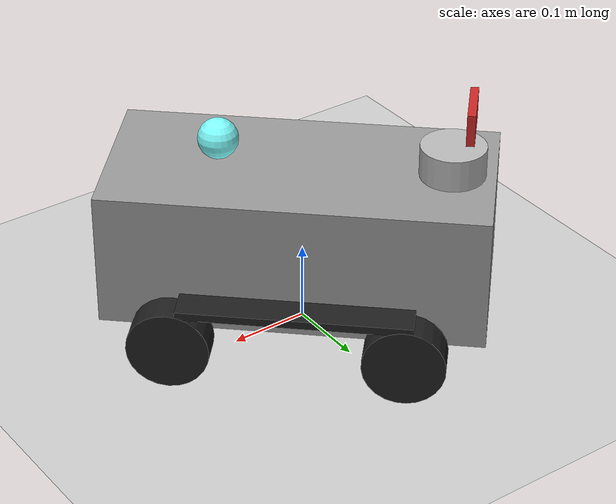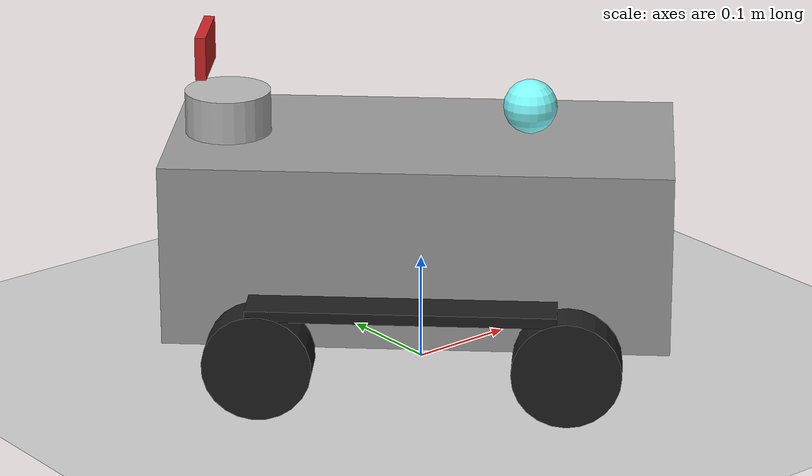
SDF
<sdf version="1.7">
 <world name="default">
  <model name="ground_plane">
   <static>1</static>
   <link name="link">
    <collision name="collision">
     <geometry><plane><normal>0 0 1</normal><size>100 100</size></plane></geometry>
     <surface>
      <contact><collide_bitmask>65535</collide_bitmask></contact>
      <friction><ode><mu>100</mu><mu2>50</mu2></ode></friction>
     </surface>
    </collision>
    <visual name="visual">
     <cast_shadows>0</cast_shadows>
     <geometry><plane><normal>0 0 1</normal><size>100 100</size></plane></geometry>
     <material>
      <script><uri>file://media/materials/scripts/gazebo.material</uri><name>Gazebo/Grey</name></script>
     </material>
    </visual>
   </link>
  </model>
  <model name="tankbot0">
   <pose>0.003414 0.002649 1e-06 8e-06 1.2e-05 2.39898</pose>
   <frame name="tankbot::__model__" attached_to="tankbot::chassis">
    <pose relative_to="__model__">0 0 0 0 -0 0</pose>
   </frame>
   <link name="tankbot::chassis">
    <pose relative_to="tankbot::__model__">0 0 0.135 0 -0 0</pose>
    <inertial>
     <pose>0.0465 0 0 0 -0 0</pose>
     <mass>2</mass>
     <inertia>
      <ixx>0.0125927</ixx>
      <iyy>0.0408542</iyy>
      <izz>0.0438135</izz>
      <ixy>0</ixy>
      <ixz>0</ixz>
      <iyz>0</iyz>
     </inertia>
    </inertial>
    <collision name="collision"><geometry><box><size>0.465 0.216 0.17</size></box></geometry></collision>
    <visual name="visual">
     <geometry><box><size>0.465 0.216 0.17</size></box></geometry>
     <material>
      <script><uri>file://media/materials/scripts/gazebo.material</uri><name>Gazebo/Grey</name></script>
     </material>
    </visual>
   </link>
   <link name="tankbot::wheel_fl">
    <pose relative_to="tankbot::__model__">0.1395 0.142 0.05 -1.5708 -0.087266 0</pose>
    <inertial>
     <mass>0.25</mass>
     <inertia>
      <ixx>0.000189583</ixx>
      <iyy>0.000189583</iyy>
      <izz>0.0003125</izz>
      <ixy>0</ixy>
      <ixz>0</ixz>
      <iyz>0</iyz>
     </inertia>
    </inertial>
    <collision name="collision">
     <geometry><cylinder><radius>0.05</radius><length>0.04</length></cylinder></geometry>
    </collision>
    <visual name="tankbot::wheel_fl">
     <geometry><cylinder><radius>0.05</radius><length>0.04</length></cylinder></geometry>
     <material>
      <script><uri>file://media/materials/scripts/gazebo.material</uri><name>Gazebo/Black</name></script>
     </material>
    </visual>
   </link>
   <joint name="tankbot::wheel_fl_drive" type="revolute">
    <parent>tankbot::chassis</parent>
    <child>tankbot::wheel_fl</child>
    <axis>
     <xyz>0 0 1</xyz>
     <limit><lower>-1e+16</lower><upper>1e+16</upper></limit>
     <dynamics><spring_reference>0</spring_reference><spring_stiffness>0</spring_stiffness></dynamics>
    </axis>
   </joint>
   <link name="tankbot::chain_l_up">
    <pose relative_to="tankbot::__model__">0.0098 0.14 0.1 0 -0 0</pose>
    <gravity>0</gravity>
    <collision name="collision"><geometry><box><size>0.28 0.04 0.01</size></box></geometry></collision>
    <visual name="visual">
     <geometry><box><size>0.28 0.04 0.01</size></box></geometry>
     <material>
      <script><uri>file://media/materials/scripts/gazebo.material</uri><name>Gazebo/Black</name></script>
     </material>
    </visual>
    <inertial>
     <inertia><ixx>1</ixx><ixy>0</ixy><ixz>0</ixz><iyy>1</iyy><iyz>0</iyz><izz>1</izz></inertia>
     <mass>1</mass>
    </inertial>
   </link>
   <link name="tankbot::chain_r_up">
    <pose relative_to="tankbot::__model__">0.0098 -0.14 0.1 0 -0 0</pose>
    <gravity>0</gravity>
    <collision name="collision"><geometry><box><size>0.28 0.04 0.01</size></box></geometry></collision>
    <visual name="visual">
     <geometry><box><size>0.28 0.04 0.01</size></box></geometry>
     <material>
      <script><uri>file://media/materials/scripts/gazebo.material</uri><name>Gazebo/Black</name></script>
     </material>
    </visual>
    <inertial>
     <inertia><ixx>1</ixx><ixy>0</ixy><ixz>0</ixz><iyy>1</iyy><iyz>0</iyz><izz>1</izz></inertia>
     <mass>1</mass>
    </inertial>
   </link>
   <joint name="tankbot::chain_up_joint" type="revolute">
    <parent>tankbot::chassis</parent>
    <child>tankbot::chain_r_up</child>
   </joint>
   <joint name="tankbot::chain_up_2_joint" type="revolute">
    <parent>tankbot::chassis</parent>
    <child>tankbot::chain_l_up</child>
   </joint>
   <link name="tankbot::wheel_fr">
    <pose relative_to="tankbot::__model__">0.1395 -0.142 0.05 -1.5708 -0.087266 0</pose>
    <inertial>
     <mass>0.25</mass>
     <inertia>
      <ixx>0.000189583</ixx>
      <iyy>0.000189583</iyy>
      <izz>0.0003125</izz>
      <ixy>0</ixy>
      <ixz>0</ixz>
      <iyz>0</iyz>
     </inertia>
    </inertial>
    <collision name="collision">
     <geometry><cylinder><radius>0.05</radius><length>0.04</length></cylinder></geometry>
    </collision>
    <visual name="visual">
     <geometry><cylinder><radius>0.05</radius><length>0.04</length></cylinder></geometry>
     <material>
      <script><uri>file://media/materials/scripts/gazebo.material</uri><name>Gazebo/Black</name></script>
     </material>
    </visual>
   </link>
   <joint name="tankbot::wheel_fr_drive" type="revolute">
    <parent>tankbot::chassis</parent>
    <child>tankbot::wheel_fr</child>
    <axis>
     <xyz>0 0 1</xyz>
     <limit><lower>-1e+16</lower><upper>1e+16</upper></limit>
     <dynamics><spring_reference>0</spring_reference><spring_stiffness>0</spring_stiffness></dynamics>
    </axis>
   </joint>
   <link name="tankbot::wheel_rl">
    <pose relative_to="tankbot::__model__">-0.1395 0.142 0.05 -1.5708 0 0</pose>
    <inertial>
     <mass>0.25</mass>
     <inertia>
      <ixx>0.000189583</ixx>
      <iyy>0.000189583</iyy>
      <izz>0.0003125</izz>
      <ixy>0</ixy>
      <ixz>0</ixz>
      <iyz>0</iyz>
     </inertia>
    </inertial>
    <collision name="collision">
     <geometry><cylinder><radius>0.05</radius><length>0.04</length></cylinder></geometry>
    </collision>
    <visual name="visual">
     <geometry><cylinder><radius>0.05</radius><length>0.04</length></cylinder></geometry>
     <material>
      <script><uri>file://media/materials/scripts/gazebo.material</uri><name>Gazebo/Black</name></script>
     </material>
    </visual>
   </link>
   <joint name="tankbot::wheel_rl_drive" type="revolute">
    <parent>tankbot::chassis</parent>
    <child>tankbot::wheel_rl</child>
    <axis>
     <xyz>0 0 1</xyz>
     <limit><lower>-1e+16</lower><upper>1e+16</upper></limit>
     <dynamics><spring_reference>0</spring_reference><spring_stiffness>0</spring_stiffness></dynamics>
    </axis>
   </joint>
   <link name="tankbot::wheel_rr">
    <pose relative_to="tankbot::__model__">-0.1395 -0.142 0.05 -1.5708 0 0</pose>
    <inertial>
     <mass>0.25</mass>
     <inertia>
      <ixx>0.000189583</ixx>
      <iyy>0.000189583</iyy>
      <izz>0.0003125</izz>
      <ixy>0</ixy>
      <ixz>0</ixz>
      <iyz>0</iyz>
     </inertia>
    </inertial>
    <collision name="collision">
     <geometry><cylinder><radius>0.05</radius><length>0.04</length></cylinder></geometry>
    </collision>
    <visual name="visual">
     <geometry><cylinder><radius>0.05</radius><length>0.04</length></cylinder></geometry>
     <material>
      <script><uri>file://media/materials/scripts/gazebo.material</uri><name>Gazebo/Black</name></script>
     </material>
    </visual>
   </link>
   <joint name="tankbot::wheel_rr_drive" type="revolute">
    <parent>tankbot::chassis</parent>
    <child>tankbot::wheel_rr</child>
    <axis>
     <xyz>0 0 1</xyz>
     <limit><lower>-1e+16</lower><upper>1e+16</upper></limit>
     <dynamics><spring_reference>0</spring_reference><spring_stiffness>0</spring_stiffness></dynamics>
    </axis>
   </joint>
   <frame name="tankbot::ultrasonic_sensor::__model__" attached_to="tankbot::ultrasonic_sensor::link">
    <pose relative_to="tankbot::__model__">0.18 0 0.24 0 -0 0</pose>
   </frame>
   <link name="tankbot::ultrasonic_sensor::link">
    <inertial>
     <mass>0.1</mass>
     <inertia><ixx>1</ixx><ixy>0</ixy><ixz>0</ixz><iyy>1</iyy><iyz>0</iyz><izz>1</izz></inertia>
    </inertial>
    <visual name="visual">
     <geometry><cylinder><radius>0.04</radius><length>0.04</length></cylinder></geometry>
    </visual>
    <collision name="collision-base">
     <pose>0 0 -0.0145 0 -0 0</pose>
     <geometry><box><size>0.05 0.05 0.041</size></box></geometry>
    </collision>
    <collision name="collision-top">
     <pose>0 0 0.0205 0 -0 0</pose>
     <geometry><cylinder><radius>0.021</radius><length>0.029</length></cylinder></geometry>
    </collision>
    <sensor name="sonar" type="sonar">
     <pose>0.04 0 0 0 1.5 3.14</pose>
     <sonar><min>0</min><max>3</max><radius>0.3</radius></sonar>
     <plugin name="sonar" filename="libSonarPlugin.so"/>
     <always_on>1</always_on>
     <update_rate>30</update_rate>
     <visualize>1</visualize>
    </sensor>
    <pose relative_to="tankbot::ultrasonic_sensor::__model__">0 0 0 0 -0 0</pose>
   </link>
   <joint name="tankbot::sonar_joint" type="fixed">
    <child>tankbot::ultrasonic_sensor::link</child>
    <parent>tankbot::chassis</parent>
   </joint>
   <frame name="tankbot::led_sensor::__model__" attached_to="tankbot::led_sensor::link">
    <pose relative_to="tankbot::__model__">-0.1 0 0.25 0 -0 0</pose>
   </frame>
   <link name="tankbot::led_sensor::link">
    <light name="lamp" type="spot">
     <pose>0 0 0 3.14159 -1.44159 3.14159</pose>
     <attenuation><range>30</range><linear>0.025</linear></attenuation>
     <diffuse>0.5 1 1 1</diffuse>
     <specular>1 1 1 1</specular>
     <spot><inner_angle>0.3</inner_angle><outer_angle>0.35</outer_angle><falloff>1</falloff></spot>
     <direction>0 0 -1</direction>
    </light>
    <visual name="lamp">
     <geometry><sphere><radius>0.025</radius></sphere></geometry>
     <material>
      <ambient>0.5 1 1 1</ambient>
      <diffuse>0.5 1 1 1</diffuse>
      <specular>1 1 1 1</specular>
      <emissive>0.5 1 1 1</emissive>
     </material>
    </visual>
    <pose relative_to="tankbot::led_sensor::__model__">0 0 0 0 -0 0</pose>
    <inertial>
     <inertia><ixx>1</ixx><ixy>0</ixy><ixz>0</ixz><iyy>1</iyy><iyz>0</iyz><izz>1</izz></inertia>
     <mass>1</mass>
    </inertial>
    <plugin name="light_control" filename="libLedPlugin.so">
     <enable>1</enable>
     <light>
      <id>link/lamp</id>
      <duration>0.5</duration>
      <interval>1</interval>
      <color>1 0 0</color>
      <enable>1</enable>
     </light>
    </plugin>
   </link>
   <joint name="tankbot::led_joint" type="fixed">
    <child>tankbot::led_sensor::link</child>
    <parent>tankbot::chassis</parent>
   </joint>
   <frame name="tankbot::camera_sensor::__model__" attached_to="tankbot::camera_sensor::link">
    <pose relative_to="tankbot::__model__">0.2 0 0.3 0 -0 0</pose>
   </frame>
   <link name="tankbot::camera_sensor::link">
    <inertial>
     <mass>0.1</mass>
     <inertia><ixx>1</ixx><ixy>0</ixy><ixz>0</ixz><iyy>1</iyy><iyz>0</iyz><izz>1</izz></inertia>
    </inertial>
    <visual name="visual">
     <geometry><box><size>0.01 0.07 0.04</size></box></geometry>
     <material>
      <script><uri>file://media/materials/scripts/gazebo.material</uri><name>Gazebo/Red</name></script>
     </material>
    </visual>
    <collision name="collision">
     <pose>0 0 -0.0145 0 -0 0</pose>
     <geometry><box><size>0.01 0.07 0.04</size></box></geometry>
    </collision>
    <sensor name="camera" type="camera">
     <camera>
      <horizontal_fov>1.39626</horizontal_fov>
      <image><width>100</width><height>100</height></image>
      <clip><near>0.02</near><far>300</far></clip>
     </camera>
     <always_on>1</always_on>
     <update_rate>10</update_rate>
     <visualize>1</visualize>
     <plugin name="camera_controller" filename="libCameraPlugin.so"/>
    </sensor>
    <pose relative_to="tankbot::camera_sensor::__model__">0 0 0 0 -0 0</pose>
   </link>
   <joint name="tankbot::camera_joint" type="fixed">
    <child>tankbot::camera_sensor::link</child>
    <parent>tankbot::chassis</parent>
   </joint>
   <plugin name="tankbot_control" filename="libtank_control_plugin.so"/>
  </model>
 </world>
</sdf>
